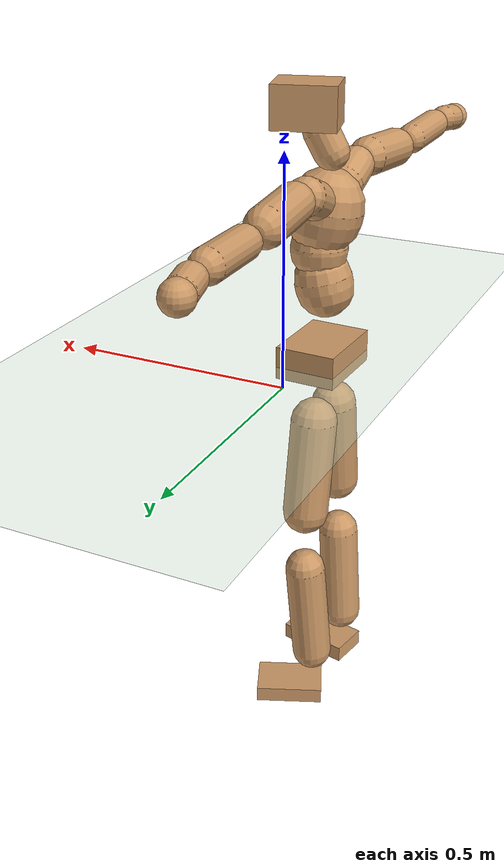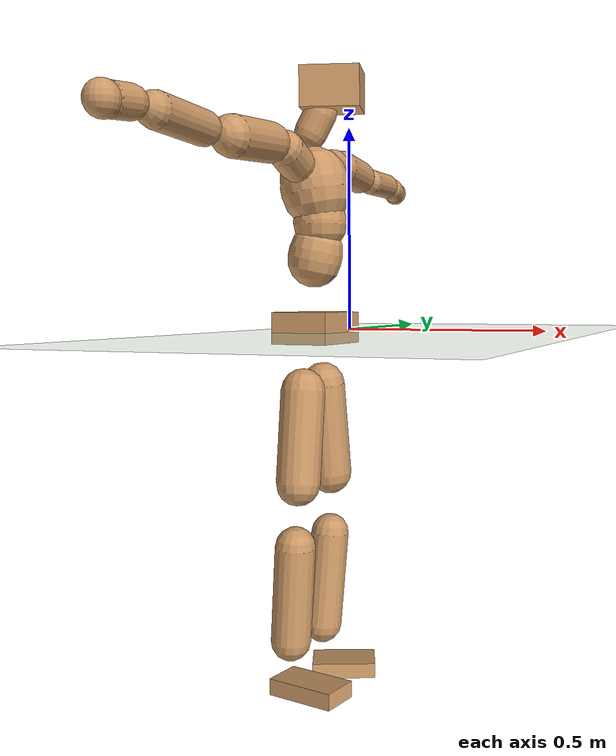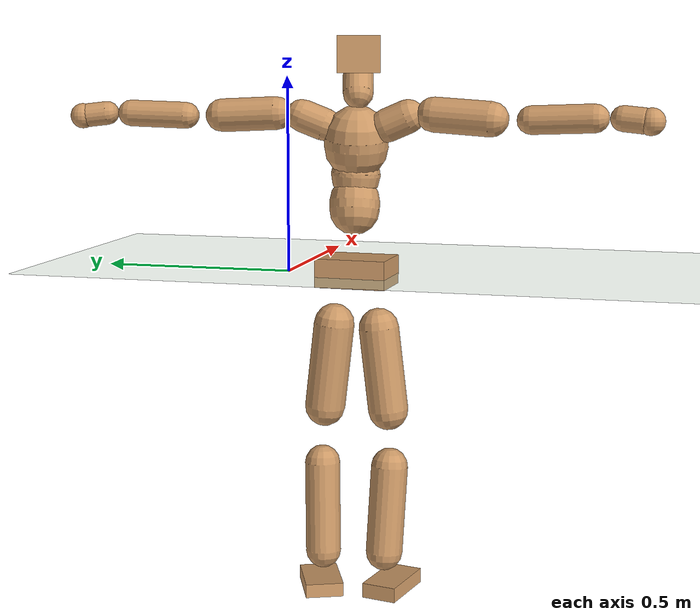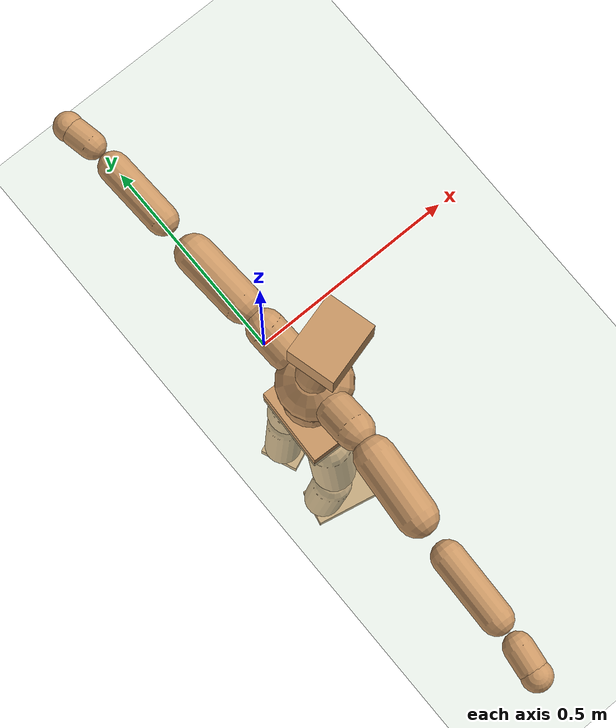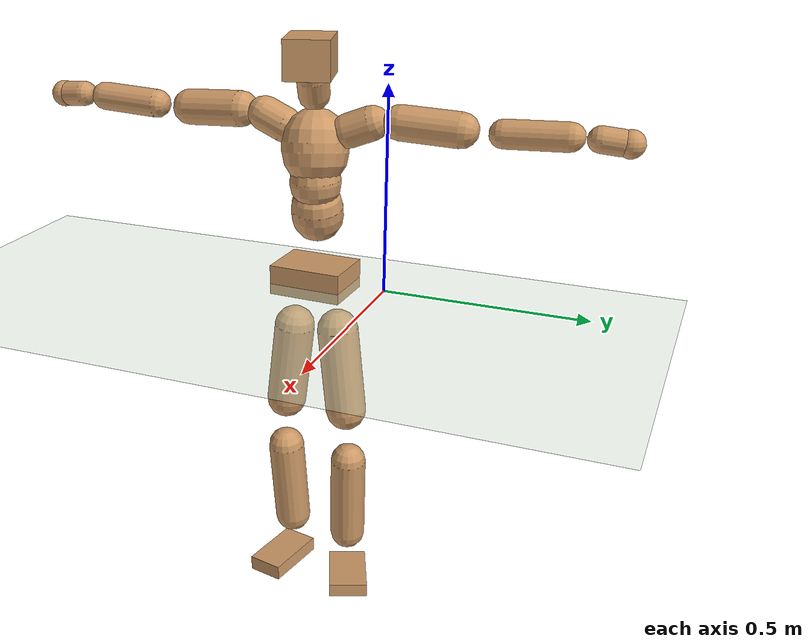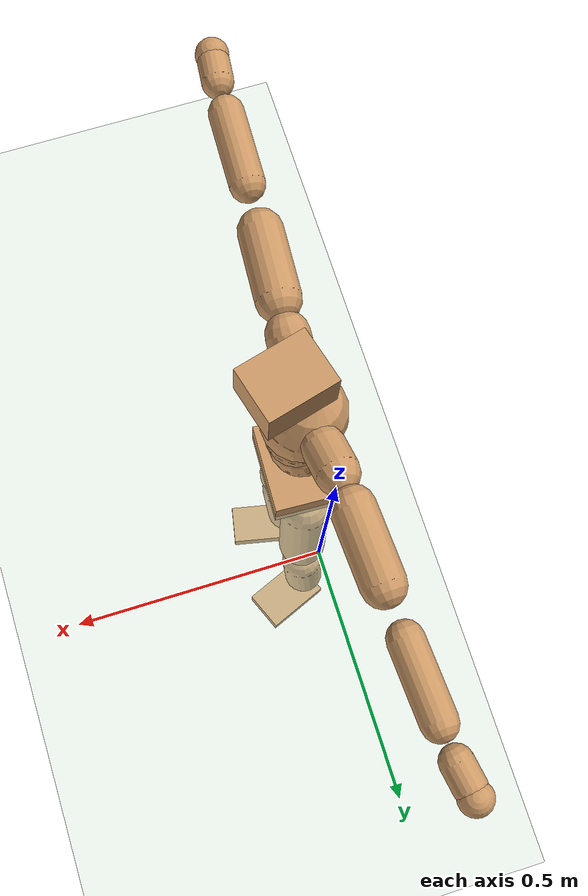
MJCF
<mujoco model="humanoid">
  <compiler coordinate="local" angle="radian"/>
  <default>
    <joint damping="0.0" armature="0.01" stiffness="0.0" limited="true"/>
    <geom conaffinity="1" condim="3" contype="7" margin="0.001" rgba="0.8 0.6 .4 1"/>
  </default>
  <asset>
    <texture type="skybox" builtin="gradient" rgb1=".4 .5 .6" rgb2="0 0 0" width="100" height="100"/>
    <texture builtin="flat" height="1278" mark="cross" markrgb="1 1 1" name="texgeom" random="0.01" rgb1="0.8 0.6 0.4" rgb2="0.8 0.6 0.4" type="cube" width="127"/>
    <texture builtin="checker" height="100" name="texplane" rgb1="0 0 0" rgb2="0.8 0.8 0.8" type="2d" width="100"/>
    <material name="MatPlane" reflectance="0.5" shininess="1" specular="1" texrepeat="60 60" texture="texplane"/>
    <material name="geom" texture="texgeom" texuniform="true"/>
  </asset>
  <worldbody>
    <light cutoff="100" diffuse="1 1 1" dir="-0 0 -1.3" directional="true" exponent="1" pos="0 0 1.3" specular=".1 .1 .1"/>
    <geom conaffinity="1" condim="3" name="floor" pos="0 0 0" rgba="0.8 0.9 0.8 1" size="100 100 .2" type="plane" material="MatPlane"/>
    <body name="Pelvis" pos="-0 -0.185 0.016">
      <freejoint name="Pelvis"/>
      <geom type="box" contype="1" conaffinity="1" density="500" pos="-0.0102 0.0004 -0.0076" size="0.0683 0.0918 0.0369" quat="0.9998 0.0000 0.0000 -0.0201" name="Pelvis"/>
      <body name="L_Hip" pos="-0.0202 0.0496 -0.0716">
        <joint name="L_Hip_x" type="hinge" pos="0 0 0" axis="1 0 0" stiffness="800" damping="80" armature="0.02" range="-180.0000 180.0000"/>
        <joint name="L_Hip_y" type="hinge" pos="0 0 0" axis="0 1 0" stiffness="800" damping="80" armature="0.02" range="-180.0000 180.0000"/>
        <joint name="L_Hip_z" type="hinge" pos="0 0 0" axis="0 0 1" stiffness="800" damping="80" armature="0.02" range="-180.0000 180.0000"/>
        <geom type="capsule" contype="1" conaffinity="1" density="500" fromto="0.0020 0.0089 -0.0740 0.0080 0.0355 -0.2961" size="0.0522" name="L_Hip"/>
        <body name="L_Knee" pos="0.01 0.0444 -0.3701">
          <joint name="L_Knee_x" type="hinge" pos="0 0 0" axis="1 0 0" stiffness="800" damping="80" armature="0.02" range="-180.0000 180.0000"/>
          <joint name="L_Knee_y" type="hinge" pos="0 0 0" axis="0 1 0" stiffness="800" damping="80" armature="0.02" range="-180.0000 180.0000"/>
          <joint name="L_Knee_z" type="hinge" pos="0 0 0" axis="0 0 1" stiffness="800" damping="80" armature="0.02" range="-180.0000 180.0000"/>
          <geom type="capsule" contype="1" conaffinity="1" density="500" fromto="-0.0060 -0.0023 -0.0784 -0.0239 -0.0092 -0.3134" size="0.0461" name="L_Knee"/>
          <body name="L_Ankle" pos="-0.0299 -0.0115 -0.3918">
            <joint name="L_Ankle_x" type="hinge" pos="0 0 0" axis="1 0 0" stiffness="800" damping="80" armature="0.02" range="-180.0000 180.0000"/>
            <joint name="L_Ankle_y" type="hinge" pos="0 0 0" axis="0 1 0" stiffness="800" damping="80" armature="0.02" range="-180.0000 180.0000"/>
            <joint name="L_Ankle_z" type="hinge" pos="0 0 0" axis="0 0 1" stiffness="800" damping="80" armature="0.02" range="-180.0000 180.0000"/>
            <geom type="box" contype="1" conaffinity="1" density="500" pos="0.0548 0.0227 -0.0275" size="0.0778 0.0499 0.0181" quat="0.9808 0.0000 0.0000 0.1952" name="L_Ankle"/>
            <body name="L_Toe" pos="0.1096 0.0454 -0.0549">
              <joint name="L_Toe_x" type="hinge" pos="0 0 0" axis="1 0 0" stiffness="500" damping="50" armature="0.02" range="-180.0000 180.0000"/>
              <joint name="L_Toe_y" type="hinge" pos="0 0 0" axis="0 1 0" stiffness="500" damping="50" armature="0.02" range="-180.0000 180.0000"/>
              <joint name="L_Toe_z" type="hinge" pos="0 0 0" axis="0 0 1" stiffness="500" damping="50" armature="0.02" range="-180.0000 180.0000"/>
              <geom type="box" contype="1" conaffinity="1" density="500" pos="0.0000 0.0000 0.0282" size="0.001 0.0024 0.0009" quat="0.9799 0.0000 0.0000 0.1996" name="L_Toe"/>
            </body>
          </body>
        </body>
      </body>
      <body name="R_Hip" pos="-0.0161 -0.0511 -0.0802">
        <joint name="R_Hip_x" type="hinge" pos="0 0 0" axis="1 0 0" stiffness="800" damping="80" armature="0.02" range="-180.0000 180.0000"/>
        <joint name="R_Hip_y" type="hinge" pos="0 0 0" axis="0 1 0" stiffness="800" damping="80" armature="0.02" range="-180.0000 180.0000"/>
        <joint name="R_Hip_z" type="hinge" pos="0 0 0" axis="0 0 1" stiffness="800" damping="80" armature="0.02" range="-180.0000 180.0000"/>
        <geom type="capsule" contype="1" conaffinity="1" density="500" fromto="-0.0005 -0.0087 -0.0717 -0.0020 -0.0349 -0.2867" size="0.0515" name="R_Hip"/>
        <body name="R_Knee" pos="-0.0025 -0.0436 -0.3584">
          <joint name="R_Knee_x" type="hinge" pos="0 0 0" axis="1 0 0" stiffness="800" damping="80" armature="0.02" range="-180.0000 180.0000"/>
          <joint name="R_Knee_y" type="hinge" pos="0 0 0" axis="0 1 0" stiffness="800" damping="80" armature="0.02" range="-180.0000 180.0000"/>
          <joint name="R_Knee_z" type="hinge" pos="0 0 0" axis="0 0 1" stiffness="800" damping="80" armature="0.02" range="-180.0000 180.0000"/>
          <geom type="capsule" contype="1" conaffinity="1" density="500" fromto="-0.0057 0.0031 -0.0763 -0.0230 0.0126 -0.3051" size="0.0475" name="R_Knee"/>
          <body name="R_Ankle" pos="-0.0287 0.0157 -0.3814">
            <joint name="R_Ankle_x" type="hinge" pos="0 0 0" axis="1 0 0" stiffness="800" damping="80" armature="0.02" range="-180.0000 180.0000"/>
            <joint name="R_Ankle_y" type="hinge" pos="0 0 0" axis="0 1 0" stiffness="800" damping="80" armature="0.02" range="-180.0000 180.0000"/>
            <joint name="R_Ankle_z" type="hinge" pos="0 0 0" axis="0 0 1" stiffness="800" damping="80" armature="0.02" range="-180.0000 180.0000"/>
            <geom type="box" contype="1" conaffinity="1" density="500" pos="0.0596 -0.0122 -0.0281" size="0.0849 0.0459 0.0194" quat="0.9949 0.0000 0.0000 -0.1008" name="R_Ankle"/>
            <body name="R_Toe" pos="0.1193 -0.0244 -0.0561">
              <joint name="R_Toe_x" type="hinge" pos="0 0 0" axis="1 0 0" stiffness="500" damping="50" armature="0.02" range="-180.0000 180.0000"/>
              <joint name="R_Toe_y" type="hinge" pos="0 0 0" axis="0 1 0" stiffness="500" damping="50" armature="0.02" range="-180.0000 180.0000"/>
              <joint name="R_Toe_z" type="hinge" pos="0 0 0" axis="0 0 1" stiffness="500" damping="50" armature="0.02" range="-180.0000 180.0000"/>
              <geom type="box" contype="1" conaffinity="1" density="500" pos="0.0000 0.0000 0.0295" size="0.0009 0.0023 0.001" quat="0.9958 0.0000 0.0000 -0.0913" name="R_Toe"/>
            </body>
          </body>
        </body>
      </body>
      <body name="Torso" pos="-0.0249 0.004 0.1062">
        <joint name="Torso_x" type="hinge" pos="0 0 0" axis="1 0 0" stiffness="1000" damping="100" armature="0.02" range="-180.0000 180.0000"/>
        <joint name="Torso_y" type="hinge" pos="0 0 0" axis="0 1 0" stiffness="1000" damping="100" armature="0.02" range="-180.0000 180.0000"/>
        <joint name="Torso_z" type="hinge" pos="0 0 0" axis="0 0 1" stiffness="1000" damping="100" armature="0.02" range="-180.0000 180.0000"/>
        <geom type="capsule" contype="1" conaffinity="1" density="500" fromto="0.0147 0.0017 0.0662 0.0098 0.0011 0.0442" size="0.0638" name="Torso"/>
        <body name="Spine" pos="0.0245 0.0028 0.1104">
          <joint name="Spine_x" type="hinge" pos="0 0 0" axis="1 0 0" stiffness="1000" damping="100" armature="0.02" range="-180.0000 180.0000"/>
          <joint name="Spine_y" type="hinge" pos="0 0 0" axis="0 1 0" stiffness="1000" damping="100" armature="0.02" range="-180.0000 180.0000"/>
          <joint name="Spine_z" type="hinge" pos="0 0 0" axis="0 0 1" stiffness="1000" damping="100" armature="0.02" range="-180.0000 180.0000"/>
          <geom type="capsule" contype="1" conaffinity="1" density="500" fromto="0.0002 -0.0012 0.0263 0.0001 -0.0008 0.0176" size="0.0627" name="Spine"/>
          <body name="Chest" pos="0.0004 -0.0021 0.0439">
            <joint name="Chest_x" type="hinge" pos="0 0 0" axis="1 0 0" stiffness="1000" damping="100" armature="0.02" range="-180.0000 180.0000"/>
            <joint name="Chest_y" type="hinge" pos="0 0 0" axis="0 1 0" stiffness="1000" damping="100" armature="0.02" range="-180.0000 180.0000"/>
            <joint name="Chest_z" type="hinge" pos="0 0 0" axis="0 0 1" stiffness="1000" damping="100" armature="0.02" range="-180.0000 180.0000"/>
            <geom type="capsule" contype="1" conaffinity="1" density="500" fromto="-0.0130 -0.0044 0.0716 -0.0087 -0.0029 0.0478" size="0.0812" name="Chest"/>
            <body name="Neck" pos="-0.026 -0.0113 0.168">
              <joint name="Neck_x" type="hinge" pos="0 0 0" axis="1 0 0" stiffness="500" damping="50" armature="0.02" range="-180.0000 180.0000"/>
              <joint name="Neck_y" type="hinge" pos="0 0 0" axis="0 1 0" stiffness="500" damping="50" armature="0.02" range="-180.0000 180.0000"/>
              <joint name="Neck_z" type="hinge" pos="0 0 0" axis="0 0 1" stiffness="500" damping="50" armature="0.02" range="-180.0000 180.0000"/>
              <geom type="capsule" contype="1" conaffinity="1" density="500" fromto="0.0076 0.0017 0.0146 0.0302 0.0069 0.0584" size="0.0385" name="Neck"/>
              <body name="Head" pos="0.0378 0.0086 0.073">
                <joint name="Head_x" type="hinge" pos="0 0 0" axis="1 0 0" stiffness="500" damping="50" armature="0.02" range="-180.0000 180.0000"/>
                <joint name="Head_y" type="hinge" pos="0 0 0" axis="0 1 0" stiffness="500" damping="50" armature="0.02" range="-180.0000 180.0000"/>
                <joint name="Head_z" type="hinge" pos="0 0 0" axis="0 0 1" stiffness="500" damping="50" armature="0.02" range="-180.0000 180.0000"/>
                <geom type="box" contype="1" conaffinity="1" density="500" pos="0.0199 0.0053 0.0375" size="0.069 0.0544 0.0463" quat="0.9915 0.0000 0.0000 0.1299" name="Head"/>
              </body>
            </body>
            <body name="L_Thorax" pos="-0.019 0.055 0.0949">
              <joint name="L_Thorax_x" type="hinge" pos="0 0 0" axis="1 0 0" stiffness="500" damping="50" armature="0.02" range="-180.0000 180.0000"/>
              <joint name="L_Thorax_y" type="hinge" pos="0 0 0" axis="0 1 0" stiffness="500" damping="50" armature="0.02" range="-180.0000 180.0000"/>
              <joint name="L_Thorax_z" type="hinge" pos="0 0 0" axis="0 0 1" stiffness="500" damping="50" armature="0.02" range="-180.0000 180.0000"/>
              <geom type="capsule" contype="1" conaffinity="1" density="500" fromto="-0.0017 0.0197 0.0077 -0.0069 0.0789 0.0309" size="0.0412" name="L_Thorax"/>
              <body name="L_Shoulder" pos="-0.0086 0.0986 0.0386">
                <joint name="L_Shoulder_x" type="hinge" pos="0 0 0" axis="1 0 0" stiffness="500" damping="50" armature="0.02" range="-720.0000 720.0000"/>
                <joint name="L_Shoulder_y" type="hinge" pos="0 0 0" axis="0 1 0" stiffness="500" damping="50" armature="0.02" range="-720.0000 720.0000"/>
                <joint name="L_Shoulder_z" type="hinge" pos="0 0 0" axis="0 0 1" stiffness="500" damping="50" armature="0.02" range="-720.0000 720.0000"/>
                <geom type="capsule" contype="1" conaffinity="1" density="500" fromto="-0.0027 0.0473 -0.0023 -0.0109 0.1893 -0.0091" size="0.0421" name="L_Shoulder"/>
                <body name="L_Elbow" pos="-0.0136 0.2366 -0.0114">
                  <joint name="L_Elbow_x" type="hinge" pos="0 0 0" axis="1 0 0" stiffness="500" damping="50" armature="0.02" range="-720.0000 720.0000"/>
                  <joint name="L_Elbow_y" type="hinge" pos="0 0 0" axis="0 1 0" stiffness="500" damping="50" armature="0.02" range="-720.0000 720.0000"/>
                  <joint name="L_Elbow_z" type="hinge" pos="0 0 0" axis="0 0 1" stiffness="500" damping="50" armature="0.02" range="-720.0000 720.0000"/>
                  <geom type="capsule" contype="1" conaffinity="1" density="500" fromto="-0.0026 0.0491 0.0014 -0.0103 0.1963 0.0058" size="0.0338" name="L_Elbow"/>
                  <body name="L_Wrist" pos="-0.0129 0.2454 0.0072">
                    <joint name="L_Wrist_x" type="hinge" pos="0 0 0" axis="1 0 0" stiffness="300" damping="30" armature="0.02" range="-180.0000 180.0000"/>
                    <joint name="L_Wrist_y" type="hinge" pos="0 0 0" axis="0 1 0" stiffness="300" damping="30" armature="0.02" range="-180.0000 180.0000"/>
                    <joint name="L_Wrist_z" type="hinge" pos="0 0 0" axis="0 0 1" stiffness="300" damping="30" armature="0.02" range="-180.0000 180.0000"/>
                    <geom type="capsule" contype="1" conaffinity="1" density="500" fromto="-0.0029 0.0158 -0.0018 -0.0118 0.0633 -0.0073" size="0.0302" name="L_Wrist"/>
                    <body name="L_Hand" pos="-0.0147 0.0792 -0.0091">
                      <joint name="L_Hand_x" type="hinge" pos="0 0 0" axis="1 0 0" stiffness="300" damping="30" armature="0.02" range="-180.0000 180.0000"/>
                      <joint name="L_Hand_y" type="hinge" pos="0 0 0" axis="0 1 0" stiffness="300" damping="30" armature="0.02" range="-180.0000 180.0000"/>
                      <joint name="L_Hand_z" type="hinge" pos="0 0 0" axis="0 0 1" stiffness="300" damping="30" armature="0.02" range="-180.0000 180.0000"/>
                      <geom type="sphere" contype="1" conaffinity="1" density="500" size="0.0321" pos="0.0000 0.0000 0.0000" name="L_Hand"/>
                    </body>
                  </body>
                </body>
              </body>
            </body>
            <body name="R_Thorax" pos="-0.0201 -0.0657 0.0953">
              <joint name="R_Thorax_x" type="hinge" pos="0 0 0" axis="1 0 0" stiffness="500" damping="50" armature="0.02" range="-180.0000 180.0000"/>
              <joint name="R_Thorax_y" type="hinge" pos="0 0 0" axis="0 1 0" stiffness="500" damping="50" armature="0.02" range="-180.0000 180.0000"/>
              <joint name="R_Thorax_z" type="hinge" pos="0 0 0" axis="0 0 1" stiffness="500" damping="50" armature="0.02" range="-180.0000 180.0000"/>
              <geom type="capsule" contype="1" conaffinity="1" density="500" fromto="-0.0002 -0.0183 0.0079 -0.0009 -0.0731 0.0316" size="0.0423" name="R_Thorax"/>
              <body name="R_Shoulder" pos="-0.0011 -0.0914 0.0395">
                <joint name="R_Shoulder_x" type="hinge" pos="0 0 0" axis="1 0 0" stiffness="500" damping="50" armature="0.02" range="-720.0000 720.0000"/>
                <joint name="R_Shoulder_y" type="hinge" pos="0 0 0" axis="0 1 0" stiffness="500" damping="50" armature="0.02" range="-720.0000 720.0000"/>
                <joint name="R_Shoulder_z" type="hinge" pos="0 0 0" axis="0 0 1" stiffness="500" damping="50" armature="0.02" range="-720.0000 720.0000"/>
                <geom type="capsule" contype="1" conaffinity="1" density="500" fromto="-0.0035 -0.0480 -0.0029 -0.0141 -0.1919 -0.0118" size="0.044" name="R_Shoulder"/>
                <body name="R_Elbow" pos="-0.0177 -0.2398 -0.0147">
                  <joint name="R_Elbow_x" type="hinge" pos="0 0 0" axis="1 0 0" stiffness="500" damping="50" armature="0.02" range="-720.0000 720.0000"/>
                  <joint name="R_Elbow_y" type="hinge" pos="0 0 0" axis="0 1 0" stiffness="500" damping="50" armature="0.02" range="-720.0000 720.0000"/>
                  <joint name="R_Elbow_z" type="hinge" pos="0 0 0" axis="0 0 1" stiffness="500" damping="50" armature="0.02" range="-720.0000 720.0000"/>
                  <geom type="capsule" contype="1" conaffinity="1" density="500" fromto="-0.0017 -0.0511 0.0022 -0.0069 -0.2044 0.0086" size="0.0351" name="R_Elbow"/>
                  <body name="R_Wrist" pos="-0.0086 -0.2555 0.0108">
                    <joint name="R_Wrist_x" type="hinge" pos="0 0 0" axis="1 0 0" stiffness="300" damping="30" armature="0.02" range="-180.0000 180.0000"/>
                    <joint name="R_Wrist_y" type="hinge" pos="0 0 0" axis="0 1 0" stiffness="300" damping="30" armature="0.02" range="-180.0000 180.0000"/>
                    <joint name="R_Wrist_z" type="hinge" pos="0 0 0" axis="0 0 1" stiffness="300" damping="30" armature="0.02" range="-180.0000 180.0000"/>
                    <geom type="capsule" contype="1" conaffinity="1" density="500" fromto="-0.0019 -0.0165 -0.0015 -0.0078 -0.0659 -0.0061" size="0.0316" name="R_Wrist"/>
                    <body name="R_Hand" pos="-0.0097 -0.0824 -0.0077">
                      <joint name="R_Hand_x" type="hinge" pos="0 0 0" axis="1 0 0" stiffness="300" damping="30" armature="0.02" range="-180.0000 180.0000"/>
                      <joint name="R_Hand_y" type="hinge" pos="0 0 0" axis="0 1 0" stiffness="300" damping="30" armature="0.02" range="-180.0000 180.0000"/>
                      <joint name="R_Hand_z" type="hinge" pos="0 0 0" axis="0 0 1" stiffness="300" damping="30" armature="0.02" range="-180.0000 180.0000"/>
                      <geom type="sphere" contype="1" conaffinity="1" density="500" size="0.0333" pos="0.0000 0.0000 0.0000" name="R_Hand"/>
                    </body>
                  </body>
                </body>
              </body>
            </body>
          </body>
        </body>
      </body>
    </body>
  </worldbody>
  <actuator>
    <motor name="L_Hip_x" joint="L_Hip_x" gear="500"/>
    <motor name="L_Hip_y" joint="L_Hip_y" gear="500"/>
    <motor name="L_Hip_z" joint="L_Hip_z" gear="500"/>
    <motor name="L_Knee_x" joint="L_Knee_x" gear="500"/>
    <motor name="L_Knee_y" joint="L_Knee_y" gear="500"/>
    <motor name="L_Knee_z" joint="L_Knee_z" gear="500"/>
    <motor name="L_Ankle_x" joint="L_Ankle_x" gear="500"/>
    <motor name="L_Ankle_y" joint="L_Ankle_y" gear="500"/>
    <motor name="L_Ankle_z" joint="L_Ankle_z" gear="500"/>
    <motor name="L_Toe_x" joint="L_Toe_x" gear="500"/>
    <motor name="L_Toe_y" joint="L_Toe_y" gear="500"/>
    <motor name="L_Toe_z" joint="L_Toe_z" gear="500"/>
    <motor name="R_Hip_x" joint="R_Hip_x" gear="500"/>
    <motor name="R_Hip_y" joint="R_Hip_y" gear="500"/>
    <motor name="R_Hip_z" joint="R_Hip_z" gear="500"/>
    <motor name="R_Knee_x" joint="R_Knee_x" gear="500"/>
    <motor name="R_Knee_y" joint="R_Knee_y" gear="500"/>
    <motor name="R_Knee_z" joint="R_Knee_z" gear="500"/>
    <motor name="R_Ankle_x" joint="R_Ankle_x" gear="500"/>
    <motor name="R_Ankle_y" joint="R_Ankle_y" gear="500"/>
    <motor name="R_Ankle_z" joint="R_Ankle_z" gear="500"/>
    <motor name="R_Toe_x" joint="R_Toe_x" gear="500"/>
    <motor name="R_Toe_y" joint="R_Toe_y" gear="500"/>
    <motor name="R_Toe_z" joint="R_Toe_z" gear="500"/>
    <motor name="Torso_x" joint="Torso_x" gear="500"/>
    <motor name="Torso_y" joint="Torso_y" gear="500"/>
    <motor name="Torso_z" joint="Torso_z" gear="500"/>
    <motor name="Spine_x" joint="Spine_x" gear="500"/>
    <motor name="Spine_y" joint="Spine_y" gear="500"/>
    <motor name="Spine_z" joint="Spine_z" gear="500"/>
    <motor name="Chest_x" joint="Chest_x" gear="500"/>
    <motor name="Chest_y" joint="Chest_y" gear="500"/>
    <motor name="Chest_z" joint="Chest_z" gear="500"/>
    <motor name="Neck_x" joint="Neck_x" gear="500"/>
    <motor name="Neck_y" joint="Neck_y" gear="500"/>
    <motor name="Neck_z" joint="Neck_z" gear="500"/>
    <motor name="Head_x" joint="Head_x" gear="500"/>
    <motor name="Head_y" joint="Head_y" gear="500"/>
    <motor name="Head_z" joint="Head_z" gear="500"/>
    <motor name="L_Thorax_x" joint="L_Thorax_x" gear="500"/>
    <motor name="L_Thorax_y" joint="L_Thorax_y" gear="500"/>
    <motor name="L_Thorax_z" joint="L_Thorax_z" gear="500"/>
    <motor name="L_Shoulder_x" joint="L_Shoulder_x" gear="500"/>
    <motor name="L_Shoulder_y" joint="L_Shoulder_y" gear="500"/>
    <motor name="L_Shoulder_z" joint="L_Shoulder_z" gear="500"/>
    <motor name="L_Elbow_x" joint="L_Elbow_x" gear="500"/>
    <motor name="L_Elbow_y" joint="L_Elbow_y" gear="500"/>
    <motor name="L_Elbow_z" joint="L_Elbow_z" gear="500"/>
    <motor name="L_Wrist_x" joint="L_Wrist_x" gear="500"/>
    <motor name="L_Wrist_y" joint="L_Wrist_y" gear="500"/>
    <motor name="L_Wrist_z" joint="L_Wrist_z" gear="500"/>
    <motor name="L_Hand_x" joint="L_Hand_x" gear="500"/>
    <motor name="L_Hand_y" joint="L_Hand_y" gear="500"/>
    <motor name="L_Hand_z" joint="L_Hand_z" gear="500"/>
    <motor name="R_Thorax_x" joint="R_Thorax_x" gear="500"/>
    <motor name="R_Thorax_y" joint="R_Thorax_y" gear="500"/>
    <motor name="R_Thorax_z" joint="R_Thorax_z" gear="500"/>
    <motor name="R_Shoulder_x" joint="R_Shoulder_x" gear="500"/>
    <motor name="R_Shoulder_y" joint="R_Shoulder_y" gear="500"/>
    <motor name="R_Shoulder_z" joint="R_Shoulder_z" gear="500"/>
    <motor name="R_Elbow_x" joint="R_Elbow_x" gear="500"/>
    <motor name="R_Elbow_y" joint="R_Elbow_y" gear="500"/>
    <motor name="R_Elbow_z" joint="R_Elbow_z" gear="500"/>
    <motor name="R_Wrist_x" joint="R_Wrist_x" gear="500"/>
    <motor name="R_Wrist_y" joint="R_Wrist_y" gear="500"/>
    <motor name="R_Wrist_z" joint="R_Wrist_z" gear="500"/>
    <motor name="R_Hand_x" joint="R_Hand_x" gear="500"/>
    <motor name="R_Hand_y" joint="R_Hand_y" gear="500"/>
    <motor name="R_Hand_z" joint="R_Hand_z" gear="500"/>
  </actuator>
  <contact>
    <exclude body1="Torso" body2="Chest"/>
    <exclude body1="Head" body2="Chest"/>
    <exclude body1="R_Knee" body2="R_Toe"/>
    <exclude body1="R_Knee" body2="L_Ankle"/>
    <exclude body1="R_Knee" body2="L_Toe"/>
    <exclude body1="L_Knee" body2="L_Toe"/>
    <exclude body1="L_Knee" body2="R_Ankle"/>
    <exclude body1="L_Knee" body2="R_Toe"/>
    <exclude body1="L_Shoulder" body2="Chest"/>
    <exclude body1="R_Shoulder" body2="Chest"/>
  </contact>
  <sensor/>
  <size njmax="700" nconmax="700"/>
</mujoco>
